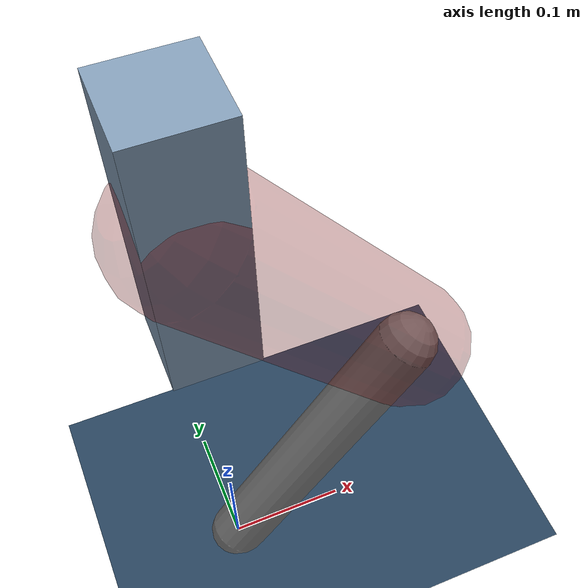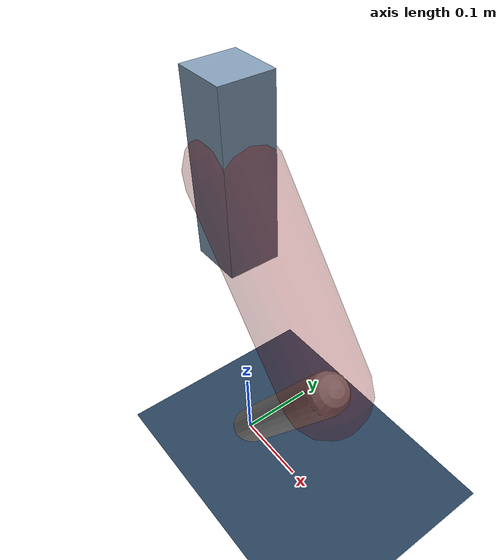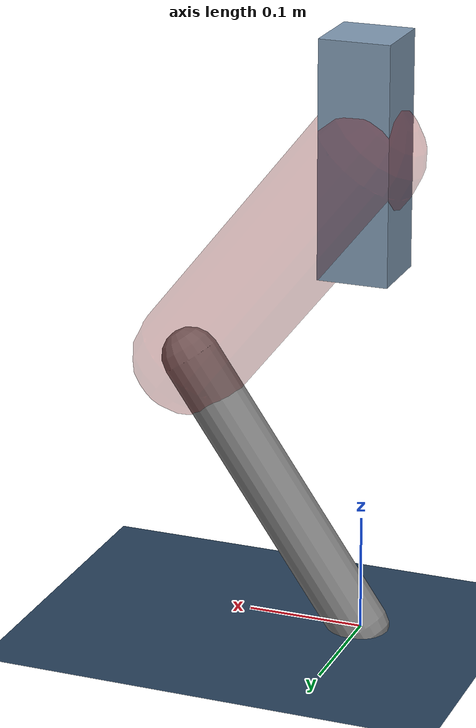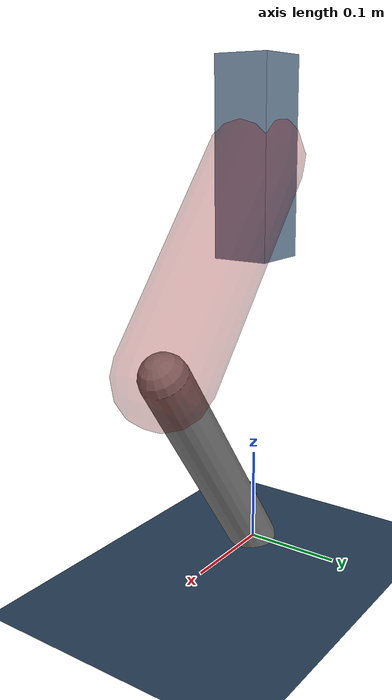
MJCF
<mujoco model="Hopper2D">
	<compiler inertiafromgeom="true" angle="radian" />
	<option timestep="0.001" integrator="implicit" cone="elliptic" solver="Newton" tolerance="1e-10" />

	<default>
		<geom contype="1" conaffinity="1" condim="3" friction="2 0.005 0.0001" solref="0.005 1" />
		<joint limited="true" damping="0.1" />
	</default>

	<asset>
		<texture name="skybox" type="skybox" builtin="gradient" rgb1=".4 .6 .8" rgb2="0 0 0" width="800" height="800" />
		<texture name="grid" type="2d" builtin="checker" rgb1=".1 .2 .3" rgb2=".2 .3 .4" width="300" height="300" mark="edge" markrgb=".2 .3 .4" />
		<material name="ground" texture="grid" texrepeat="1 1" texuniform="true" reflectance="0.1" />
		<material name="leg" rgba="0.5 0.6 0.7 1" />
	</asset>

	<worldbody>

		<geom name="floor" type="plane" size="5 5 0.25" material="ground" />

		<light directional="false" diffuse="0.8 0.8 0.8" specular="0.3 0.3 0.3" pos="0 0 2" dir="0 0 -1" />
		<light mode="targetbodycom" target="base" directional="false" diffuse="0.8 0.8 0.8" specular="0.3 0.3 0.3" pos="0 0 2" dir="0 0 -1" />

		<camera name="fixed" pos="0 -2 1" xyaxes="1 0 0 0 0 1" />
		<camera name="tracking" mode="trackcom" pos="0 -3 1" />

		<body name="root" pos="0 0 0.4175242454169356">
			<joint name="slide_x" type="slide" axis="1 0 0" range="-100 100" />
			<joint name="slide_z" type="slide" axis="0 0 1" range="0 10" />

			<body name="base" pos="0 0 0">
				<geom name="torso" type="box" size="0.03 0.03 0.1" mass="2.3449999999999998" material="leg" />

				<body name="link1" pos="0 0 0" euler="0 0.8962407382654296 0">
					<joint type="hinge" axis="0 -1 0" pos="0 0 0" name="hinge1" limited="true" range="-3.14 3.14" stiffness="0" damping="0.1" />
					<geom name="thigh" type="capsule" fromto="0 0 0 0.246482825667138 0 0" size="0.05" rgba="0.5 0 0 0.3" mass="0.8472553467345588" />

					<body name="link2" pos="0.246482825667138 0 0" euler="0 1.2745345985995906 0">
						<joint type="hinge" axis="0 -1 0" pos="0 0 0" name="hinge2" limited="true" range="-3.14 3.14" stiffness="0" damping="0.1" />
						<geom name="shank" type="capsule" fromto="0 0 0 0.2726426954575152 0 0" size="0.025" mass="0.4611141563660121" />

					</body>
				</body>
			</body>
		</body>
	</worldbody>

	<actuator>
		<motor name="torque1" joint="hinge1" ctrlrange="-92.91262759809626 92.91262759809626" ctrllimited="true" gear="1" />
		<motor name="torque2" joint="hinge2" ctrlrange="-59.71473475214212 59.71473475214212" ctrllimited="true" gear="1" />
	</actuator>
</mujoco>
